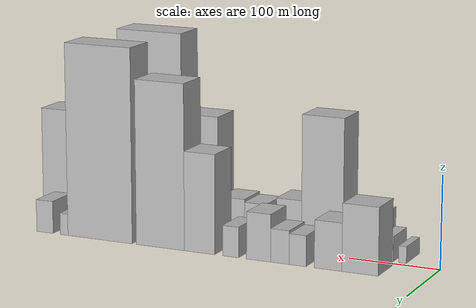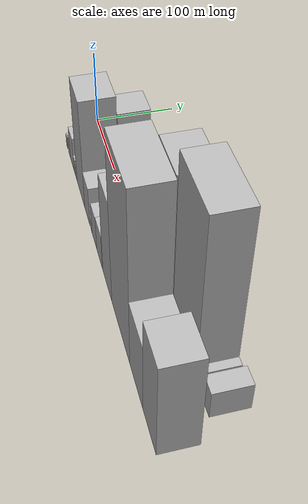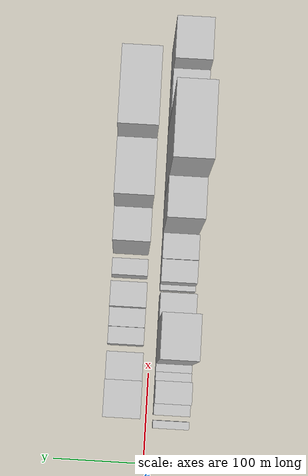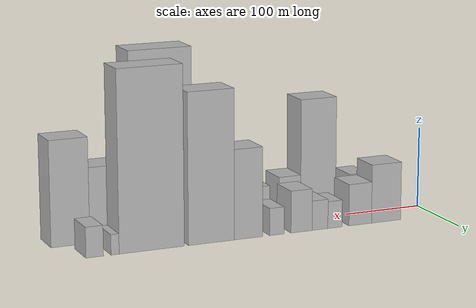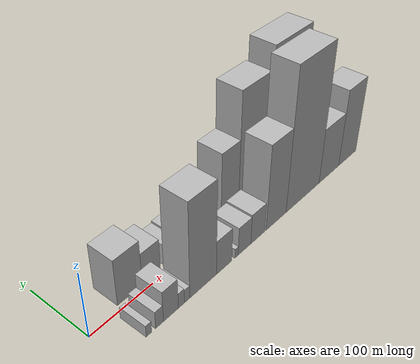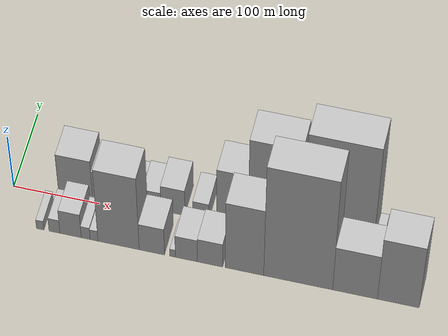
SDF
<sdf version="1.6">
 <world name="default">
  <scene>
   <sky><clouds><speed>12</speed></clouds></sky>
   <ambient>0.4 0.4 0.4 1</ambient>
   <background>0.7 0.7 0.7 1</background>
   <shadows>1</shadows>
  </scene>
  <gravity>0 0 -9.8066</gravity>
  <magnetic_field>6e-06 2.3e-05 -4.2e-05</magnetic_field>
  <physics default="0" name="default_physics" type="ode">
   <ode>
    <solver>
     <type>quick</type>
     <iters>10</iters>
     <sor>1.0</sor>
     <use_dynamic_moi_rescaling>0</use_dynamic_moi_rescaling>
    </solver>
    <constraints>
     <cfm>0</cfm>
     <erp>0.2</erp>
     <contact_max_correcting_vel>100</contact_max_correcting_vel>
     <contact_surface_layer>0.001</contact_surface_layer>
    </constraints>
   </ode>
   <max_step_size>0.004</max_step_size>
   <real_time_factor>1</real_time_factor>
   <real_time_update_rate>250</real_time_update_rate>
  </physics>
  <light name="sun" type="directional">
   <pose>0 0 10 0 0 0</pose>
   <diffuse>0.8 0.8 0.8 1</diffuse>
   <specular>0.2 0.2 0.2 1</specular>
   <attenuation>
    <range>1000</range>
    <constant>0.9</constant>
    <linear>0.01</linear>
    <quadratic>0.001</quadratic>
   </attenuation>
   <direction>-0.5 0.1 -0.9</direction>
  </light>
  <model name="building_1">
   <static>1</static>
   <pose>69.8344 27.5000 0 0.000000 0.000000 1.570796</pose>
   <link name="link">
    <pose>0 0 36.00 0 0 0</pose>
    <collision name="collision"><geometry><box><size>40.0000 39.6687 72.0000</size></box></geometry></collision>
    <visual name="visual">
     <cast_shadows>0</cast_shadows>
     <geometry><box><size>40.0000 39.6687 72.0000</size></box></geometry>
     <material>
      <script>
       <uri>model://HANNAS_wall/materials/scripts</uri>
       <uri>model://HANNAS_wall/materials/textures</uri>
       <name>vrc/HANNAS_wall</name>
      </script>
     </material>
    </visual>
   </link>
  </model>
  <model name="building_2">
   <static>1</static>
   <pose>104.9173 27.5000 0 0.000000 0.000000 1.570796</pose>
   <link name="link">
    <pose>0 0 25.50 0 0 0</pose>
    <collision name="collision"><geometry><box><size>40.0000 30.4970 51.0000</size></box></geometry></collision>
    <visual name="visual">
     <cast_shadows>0</cast_shadows>
     <geometry><box><size>40.0000 30.4970 51.0000</size></box></geometry>
     <material>
      <script>
       <uri>model://HANNAS_wall/materials/scripts</uri>
       <uri>model://HANNAS_wall/materials/textures</uri>
       <name>vrc/HANNAS_wall</name>
      </script>
     </material>
    </visual>
   </link>
  </model>
  <model name="building_3">
   <static>1</static>
   <pose>138.7140 27.5000 0 0.000000 0.000000 1.570796</pose>
   <link name="link">
    <pose>0 0 16.50 0 0 0</pose>
    <collision name="collision"><geometry><box><size>40.0000 19.0965 33.0000</size></box></geometry></collision>
    <visual name="visual">
     <cast_shadows>0</cast_shadows>
     <geometry><box><size>40.0000 19.0965 33.0000</size></box></geometry>
     <material>
      <script>
       <uri>model://HANNAS_wall/materials/scripts</uri>
       <uri>model://HANNAS_wall/materials/textures</uri>
       <name>vrc/HANNAS_wall</name>
      </script>
     </material>
    </visual>
   </link>
  </model>
  <model name="building_4">
   <static>1</static>
   <pose>158.7225 27.5000 0 0.000000 0.000000 1.570796</pose>
   <link name="link">
    <pose>0 0 18.00 0 0 0</pose>
    <collision name="collision"><geometry><box><size>40.0000 20.9205 36.0000</size></box></geometry></collision>
    <visual name="visual">
     <cast_shadows>0</cast_shadows>
     <geometry><box><size>40.0000 20.9205 36.0000</size></box></geometry>
     <material>
      <script>
       <uri>model://HANNAS_wall/materials/scripts</uri>
       <uri>model://HANNAS_wall/materials/textures</uri>
       <name>vrc/HANNAS_wall</name>
      </script>
     </material>
    </visual>
   </link>
  </model>
  <model name="building_5">
   <static>1</static>
   <pose>182.9783 27.5000 0 0.000000 0.000000 1.570796</pose>
   <link name="link">
    <pose>0 0 25.50 0 0 0</pose>
    <collision name="collision"><geometry><box><size>40.0000 27.5910 51.0000</size></box></geometry></collision>
    <visual name="visual">
     <cast_shadows>0</cast_shadows>
     <geometry><box><size>40.0000 27.5910 51.0000</size></box></geometry>
     <material>
      <script>
       <uri>model://HANNAS_wall/materials/scripts</uri>
       <uri>model://HANNAS_wall/materials/textures</uri>
       <name>vrc/HANNAS_wall</name>
      </script>
     </material>
    </visual>
   </link>
  </model>
  <model name="building_6">
   <static>1</static>
   <pose>215.0723 27.5000 0 0.000000 0.000000 1.570796</pose>
   <link name="link">
    <pose>0 0 16.50 0 0 0</pose>
    <collision name="collision"><geometry><box><size>40.0000 18.5970 33.0000</size></box></geometry></collision>
    <visual name="visual">
     <cast_shadows>0</cast_shadows>
     <geometry><box><size>40.0000 18.5970 33.0000</size></box></geometry>
     <material>
      <script>
       <uri>model://HANNAS_wall/materials/scripts</uri>
       <uri>model://HANNAS_wall/materials/textures</uri>
       <name>vrc/HANNAS_wall</name>
      </script>
     </material>
    </visual>
   </link>
  </model>
  <model name="building_7">
   <static>1</static>
   <pose>251.3173 27.5000 0 0.000000 0.000000 1.570796</pose>
   <link name="link">
    <pose>0 0 54.00 0 0 0</pose>
    <collision name="collision"><geometry><box><size>40.0000 35.8931 108.0000</size></box></geometry></collision>
    <visual name="visual">
     <cast_shadows>0</cast_shadows>
     <geometry><box><size>40.0000 35.8931 108.0000</size></box></geometry>
     <material>
      <script>
       <uri>model://HANNAS_wall/materials/scripts</uri>
       <uri>model://HANNAS_wall/materials/textures</uri>
       <name>vrc/HANNAS_wall</name>
      </script>
     </material>
    </visual>
   </link>
  </model>
  <model name="building_8">
   <static>1</static>
   <pose>298.0282 27.5000 0 0.000000 0.000000 1.570796</pose>
   <link name="link">
    <pose>0 0 90.00 0 0 0</pose>
    <collision name="collision"><geometry><box><size>40.0000 57.5286 180.0000</size></box></geometry></collision>
    <visual name="visual">
     <cast_shadows>0</cast_shadows>
     <geometry><box><size>40.0000 57.5286 180.0000</size></box></geometry>
     <material>
      <script>
       <uri>model://HANNAS_wall/materials/scripts</uri>
       <uri>model://HANNAS_wall/materials/textures</uri>
       <name>vrc/HANNAS_wall</name>
      </script>
     </material>
    </visual>
   </link>
  </model>
  <model name="building_9">
   <static>1</static>
   <pose>371.4095 27.5000 0 0.000000 0.000000 1.570796</pose>
   <link name="link">
    <pose>0 0 106.50 0 0 0</pose>
    <collision name="collision"><geometry><box><size>40.0000 79.2340 213.0000</size></box></geometry></collision>
    <visual name="visual">
     <cast_shadows>0</cast_shadows>
     <geometry><box><size>40.0000 79.2340 213.0000</size></box></geometry>
     <material>
      <script>
       <uri>model://HANNAS_wall/materials/scripts</uri>
       <uri>model://HANNAS_wall/materials/textures</uri>
       <name>vrc/HANNAS_wall</name>
      </script>
     </material>
    </visual>
   </link>
  </model>
  <model name="building_10">
   <static>1</static>
   <pose>415.8608 27.5000 0 0.000000 0.000000 1.570796</pose>
   <link name="link">
    <pose>0 0 12.00 0 0 0</pose>
    <collision name="collision"><geometry><box><size>40.0000 9.6687 24.0000</size></box></geometry></collision>
    <visual name="visual">
     <cast_shadows>0</cast_shadows>
     <geometry><box><size>40.0000 9.6687 24.0000</size></box></geometry>
     <material>
      <script>
       <uri>model://HANNAS_wall/materials/scripts</uri>
       <uri>model://HANNAS_wall/materials/textures</uri>
       <name>vrc/HANNAS_wall</name>
      </script>
     </material>
    </visual>
   </link>
  </model>
  <model name="building_11">
   <static>1</static>
   <pose>440.0582 27.5000 0 0.000000 0.000000 1.570796</pose>
   <link name="link">
    <pose>0 0 18.00 0 0 0</pose>
    <collision name="collision"><geometry><box><size>40.0000 20.7260 36.0000</size></box></geometry></collision>
    <visual name="visual">
     <cast_shadows>0</cast_shadows>
     <geometry><box><size>40.0000 20.7260 36.0000</size></box></geometry>
     <material>
      <script>
       <uri>model://HANNAS_wall/materials/scripts</uri>
       <uri>model://HANNAS_wall/materials/textures</uri>
       <name>vrc/HANNAS_wall</name>
      </script>
     </material>
    </visual>
   </link>
  </model>
  <model name="building_12">
   <static>1</static>
   <pose>44.2804 -27.5000 0 0.000000 0.000000 1.570796</pose>
   <link name="link">
    <pose>0 0 9.00 0 0 0</pose>
    <collision name="collision"><geometry><box><size>40.0000 8.5608 18.0000</size></box></geometry></collision>
    <visual name="visual">
     <cast_shadows>0</cast_shadows>
     <geometry><box><size>40.0000 8.5608 18.0000</size></box></geometry>
     <material>
      <script>
       <uri>model://HANNAS_wall/materials/scripts</uri>
       <uri>model://HANNAS_wall/materials/textures</uri>
       <name>vrc/HANNAS_wall</name>
      </script>
     </material>
    </visual>
   </link>
  </model>
  <model name="building_13">
   <static>1</static>
   <pose>60.8086 -27.5000 0 0.000000 0.000000 1.570796</pose>
   <link name="link">
    <pose>0 0 13.50 0 0 0</pose>
    <collision name="collision"><geometry><box><size>40.0000 12.4957 27.0000</size></box></geometry></collision>
    <visual name="visual">
     <cast_shadows>0</cast_shadows>
     <geometry><box><size>40.0000 12.4957 27.0000</size></box></geometry>
     <material>
      <script>
       <uri>model://HANNAS_wall/materials/scripts</uri>
       <uri>model://HANNAS_wall/materials/textures</uri>
       <name>vrc/HANNAS_wall</name>
      </script>
     </material>
    </visual>
   </link>
  </model>
  <model name="building_14">
   <static>1</static>
   <pose>79.3289 -27.5000 0 0.000000 0.000000 1.570796</pose>
   <link name="link">
    <pose>0 0 24.00 0 0 0</pose>
    <collision name="collision"><geometry><box><size>40.0000 24.5448 48.0000</size></box></geometry></collision>
    <visual name="visual">
     <cast_shadows>0</cast_shadows>
     <geometry><box><size>40.0000 24.5448 48.0000</size></box></geometry>
     <material>
      <script>
       <uri>model://HANNAS_wall/materials/scripts</uri>
       <uri>model://HANNAS_wall/materials/textures</uri>
       <name>vrc/HANNAS_wall</name>
      </script>
     </material>
    </visual>
   </link>
  </model>
  <model name="building_15">
   <static>1</static>
   <pose>96.6888 -27.5000 0 0.000000 0.000000 1.570796</pose>
   <link name="link">
    <pose>0 0 12.00 0 0 0</pose>
    <collision name="collision"><geometry><box><size>40.0000 10.1751 24.0000</size></box></geometry></collision>
    <visual name="visual">
     <cast_shadows>0</cast_shadows>
     <geometry><box><size>40.0000 10.1751 24.0000</size></box></geometry>
     <material>
      <script>
       <uri>model://HANNAS_wall/materials/scripts</uri>
       <uri>model://HANNAS_wall/materials/textures</uri>
       <name>vrc/HANNAS_wall</name>
      </script>
     </material>
    </visual>
   </link>
  </model>
  <model name="building_16">
   <static>1</static>
   <pose>106.3080 -27.5000 0 0.000000 0.000000 1.570796</pose>
   <link name="link">
    <pose>0 0 10.50 0 0 0</pose>
    <collision name="collision"><geometry><box><size>40.0000 9.0631 21.0000</size></box></geometry></collision>
    <visual name="visual">
     <cast_shadows>0</cast_shadows>
     <geometry><box><size>40.0000 9.0631 21.0000</size></box></geometry>
     <material>
      <script>
       <uri>model://HANNAS_wall/materials/scripts</uri>
       <uri>model://HANNAS_wall/materials/textures</uri>
       <name>vrc/HANNAS_wall</name>
      </script>
     </material>
    </visual>
   </link>
  </model>
  <model name="building_17">
   <static>1</static>
   <pose>134.4979 -27.5000 0 0.000000 0.000000 1.570796</pose>
   <link name="link">
    <pose>0 0 73.50 0 0 0</pose>
    <collision name="collision"><geometry><box><size>40.0000 47.3167 147.0000</size></box></geometry></collision>
    <visual name="visual">
     <cast_shadows>0</cast_shadows>
     <geometry><box><size>40.0000 47.3167 147.0000</size></box></geometry>
     <material>
      <script>
       <uri>model://HANNAS_wall/materials/scripts</uri>
       <uri>model://HANNAS_wall/materials/textures</uri>
       <name>vrc/HANNAS_wall</name>
      </script>
     </material>
    </visual>
   </link>
  </model>
  <model name="building_18">
   <static>1</static>
   <pose>172.6167 -27.5000 0 0.000000 0.000000 1.570796</pose>
   <link name="link">
    <pose>0 0 27.00 0 0 0</pose>
    <collision name="collision"><geometry><box><size>40.0000 28.9208 54.0000</size></box></geometry></collision>
    <visual name="visual">
     <cast_shadows>0</cast_shadows>
     <geometry><box><size>40.0000 28.9208 54.0000</size></box></geometry>
     <material>
      <script>
       <uri>model://HANNAS_wall/materials/scripts</uri>
       <uri>model://HANNAS_wall/materials/textures</uri>
       <name>vrc/HANNAS_wall</name>
      </script>
     </material>
    </visual>
   </link>
  </model>
  <model name="building_19">
   <static>1</static>
   <pose>196.2464 -27.5000 0 0.000000 0.000000 1.570796</pose>
   <link name="link">
    <pose>0 0 7.50 0 0 0</pose>
    <collision name="collision"><geometry><box><size>40.0000 6.3386 15.0000</size></box></geometry></collision>
    <visual name="visual">
     <cast_shadows>0</cast_shadows>
     <geometry><box><size>40.0000 6.3386 15.0000</size></box></geometry>
     <material>
      <script>
       <uri>model://HANNAS_wall/materials/scripts</uri>
       <uri>model://HANNAS_wall/materials/textures</uri>
       <name>vrc/HANNAS_wall</name>
      </script>
     </material>
    </visual>
   </link>
  </model>
  <model name="building_20">
   <static>1</static>
   <pose>212.0157 -27.5000 0 0.000000 0.000000 1.570796</pose>
   <link name="link">
    <pose>0 0 22.50 0 0 0</pose>
    <collision name="collision"><geometry><box><size>40.0000 25.1999 45.0000</size></box></geometry></collision>
    <visual name="visual">
     <cast_shadows>0</cast_shadows>
     <geometry><box><size>40.0000 25.1999 45.0000</size></box></geometry>
     <material>
      <script>
       <uri>model://HANNAS_wall/materials/scripts</uri>
       <uri>model://HANNAS_wall/materials/textures</uri>
       <name>vrc/HANNAS_wall</name>
      </script>
     </material>
    </visual>
   </link>
  </model>
  <model name="building_21">
   <static>1</static>
   <pose>238.9415 -27.5000 0 0.000000 0.000000 1.570796</pose>
   <link name="link">
    <pose>0 0 24.00 0 0 0</pose>
    <collision name="collision"><geometry><box><size>40.0000 28.6516 48.0000</size></box></geometry></collision>
    <visual name="visual">
     <cast_shadows>0</cast_shadows>
     <geometry><box><size>40.0000 28.6516 48.0000</size></box></geometry>
     <material>
      <script>
       <uri>model://HANNAS_wall/materials/scripts</uri>
       <uri>model://HANNAS_wall/materials/textures</uri>
       <name>vrc/HANNAS_wall</name>
      </script>
     </material>
    </visual>
   </link>
  </model>
  <model name="building_22">
   <static>1</static>
   <pose>278.0018 -27.5000 0 0.000000 0.000000 1.570796</pose>
   <link name="link">
    <pose>0 0 67.50 0 0 0</pose>
    <collision name="collision"><geometry><box><size>40.0000 43.4692 135.0000</size></box></geometry></collision>
    <visual name="visual">
     <cast_shadows>0</cast_shadows>
     <geometry><box><size>40.0000 43.4692 135.0000</size></box></geometry>
     <material>
      <script>
       <uri>model://HANNAS_wall/materials/scripts</uri>
       <uri>model://HANNAS_wall/materials/textures</uri>
       <name>vrc/HANNAS_wall</name>
      </script>
     </material>
    </visual>
   </link>
  </model>
  <model name="building_23">
   <static>1</static>
   <pose>338.6125 -27.5000 0 0.000000 0.000000 1.570796</pose>
   <link name="link">
    <pose>0 0 111.00 0 0 0</pose>
    <collision name="collision"><geometry><box><size>40.0000 77.7521 222.0000</size></box></geometry></collision>
    <visual name="visual">
     <cast_shadows>0</cast_shadows>
     <geometry><box><size>40.0000 77.7521 222.0000</size></box></geometry>
     <material>
      <script>
       <uri>model://HANNAS_wall/materials/scripts</uri>
       <uri>model://HANNAS_wall/materials/textures</uri>
       <name>vrc/HANNAS_wall</name>
      </script>
     </material>
    </visual>
   </link>
  </model>
  <model name="building_24">
   <static>1</static>
   <pose>402.5265 -27.5000 0 0.000000 0.000000 1.570796</pose>
   <link name="link">
    <pose>0 0 45.00 0 0 0</pose>
    <collision name="collision"><geometry><box><size>40.0000 50.0759 90.0000</size></box></geometry></collision>
    <visual name="visual">
     <cast_shadows>0</cast_shadows>
     <geometry><box><size>40.0000 50.0759 90.0000</size></box></geometry>
     <material>
      <script>
       <uri>model://HANNAS_wall/materials/scripts</uri>
       <uri>model://HANNAS_wall/materials/textures</uri>
       <name>vrc/HANNAS_wall</name>
      </script>
     </material>
    </visual>
   </link>
  </model>
  <model name="building_25">
   <static>1</static>
   <pose>450.8879 -27.5000 0 0.000000 0.000000 1.570796</pose>
   <link name="link">
    <pose>0 0 63.00 0 0 0</pose>
    <collision name="collision"><geometry><box><size>40.0000 46.6470 126.0000</size></box></geometry></collision>
    <visual name="visual">
     <cast_shadows>0</cast_shadows>
     <geometry><box><size>40.0000 46.6470 126.0000</size></box></geometry>
     <material>
      <script>
       <uri>model://HANNAS_wall/materials/scripts</uri>
       <uri>model://HANNAS_wall/materials/textures</uri>
       <name>vrc/HANNAS_wall</name>
      </script>
     </material>
    </visual>
   </link>
  </model>
 </world>
</sdf>
